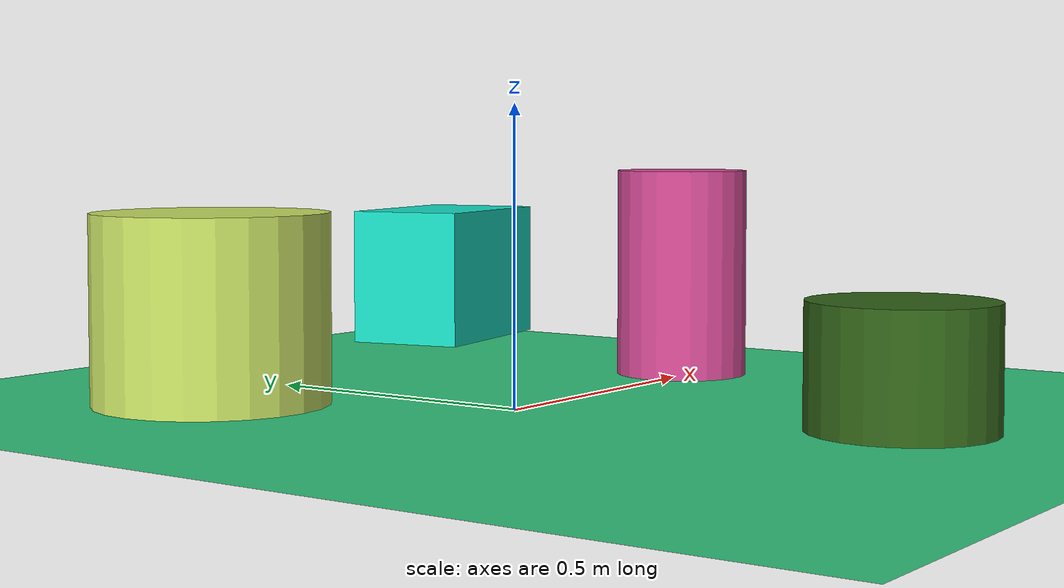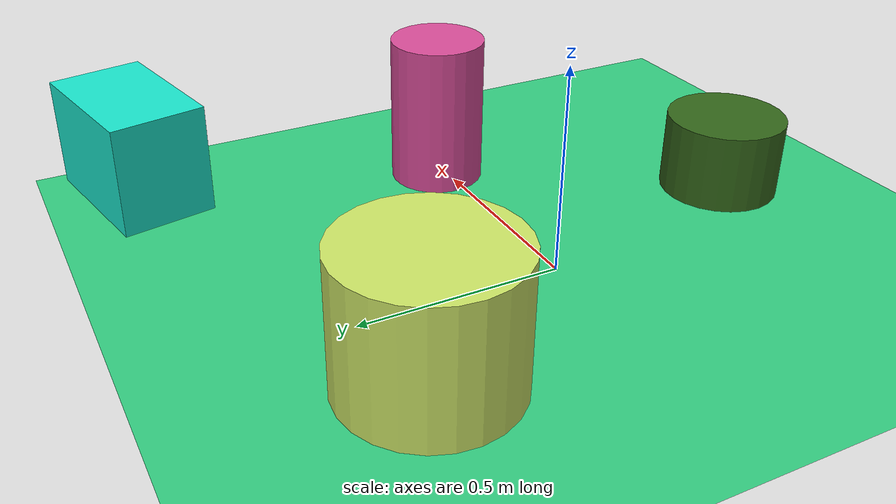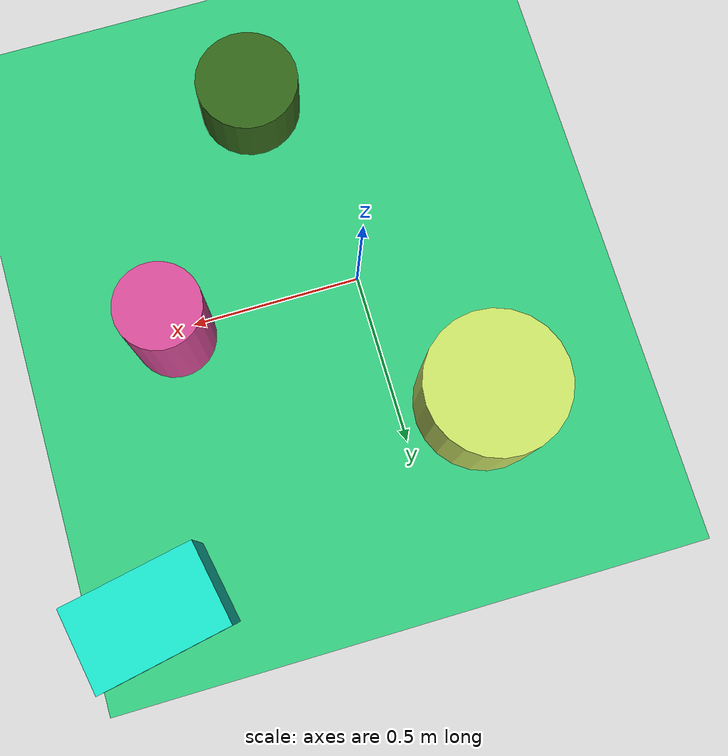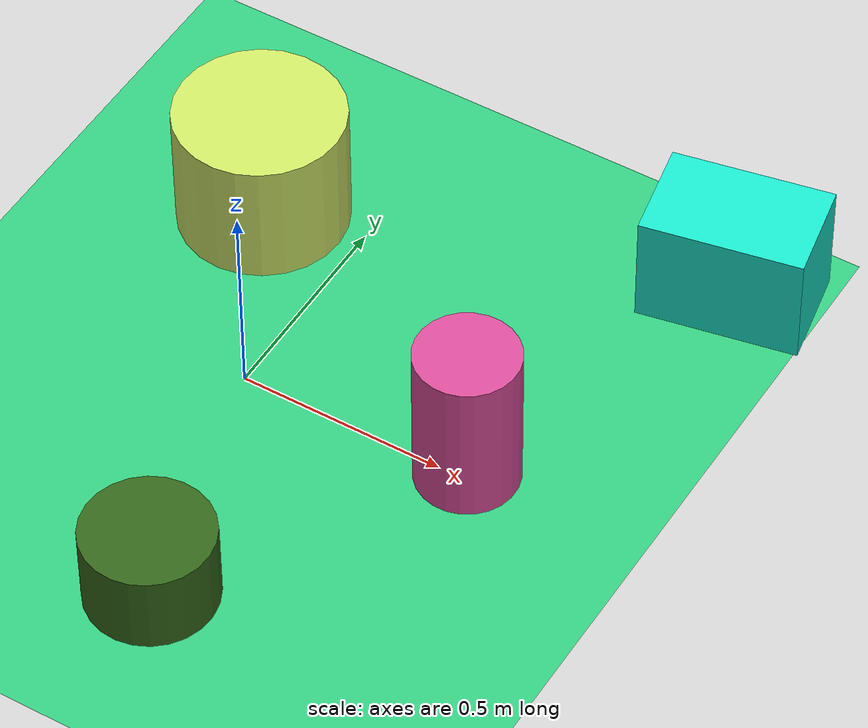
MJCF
<mujoco>
   <asset>
<texture type="skybox" builtin="gradient" rgb1="0.4 0.9 0.4" rgb2="0.0 0.7 0.9" width="256" height="256"/>
<texture name="flat_0" builtin="flat" rgb1="0.8 0.9 0.4" rgb2="0.8 0.9 0.4"  width="200" height="200"/>
<texture name="flat_1" builtin="flat" rgb1="0.2 0.4 0.1" rgb2="0.2 0.4 0.1"  width="200" height="200"/>
<texture name="flat_2" builtin="flat" rgb1="0.1 0.9 0.8" rgb2="0.1 0.9 0.8"  width="200" height="200"/>
<texture name="gradient_3" builtin="gradient" rgb1="0.9 0.0 0.9" rgb2="0.8 0.6 0.3" width="200" height="200"/><material name="flat_0_mat" reflectance="0" texture="flat_0" texuniform="true"/>
<material name="flat_1_mat" reflectance="0" texture="flat_1" texuniform="true"/>
<material name="flat_2_mat" reflectance="0" texture="flat_2" texuniform="true"/>
<material name="gradient_3_mat" reflectance="0" texture="gradient_3" texuniform="true"/>
   </asset>

   <worldbody>
      <light diffuse=".9 .9 .9" pos="0 0 3" dir="0 0 -1"/>
     <geom type="plane" size="1 1 0.1" rgba="0.2 0.8 0.5 1"/>
<geom type="cylinder" pos="-0.24 0.45 0.16" size="0.2 0.16 0.16" material="flat_0_mat" euler="0 0 2" />
<geom type="cylinder" pos="0.16 -0.61 0.1" size="0.15 0.1 0.1" material="flat_1_mat" euler="0 0 3" />
<geom type="box" pos="0.8 0.77 0.14" size="0.19 0.12 0.14" material="flat_2_mat" euler="0 0 11" />
<geom type="cylinder" pos="0.56 0.02 0.19" size="0.12 0.19 0.19" material="gradient_3_mat" euler="0 0 9" /><camera euler="60 0 180" fovy="60" name="camera1" pos="-0.2 -1.5 1"></camera>   </worldbody>
</mujoco>
